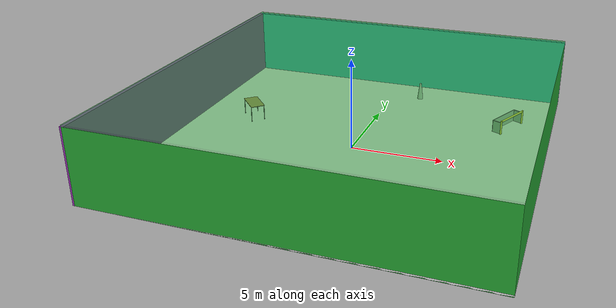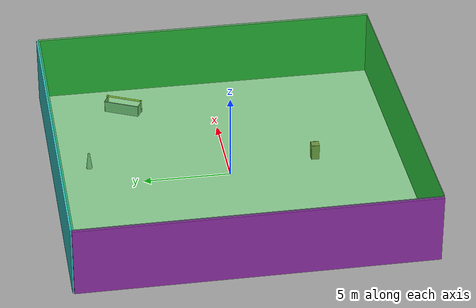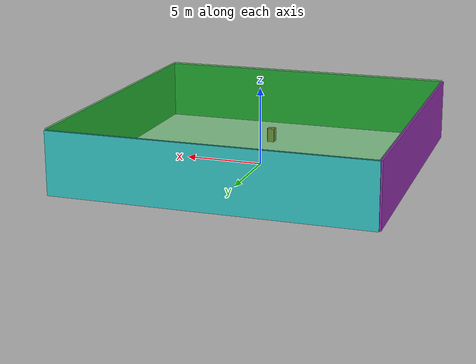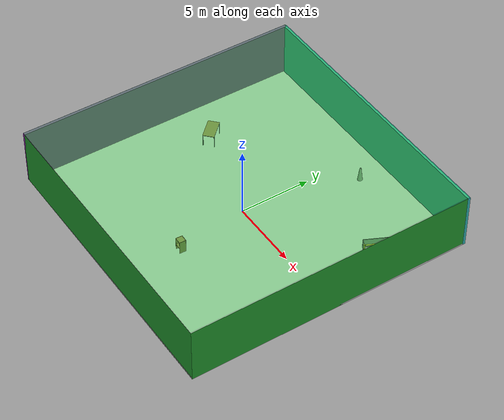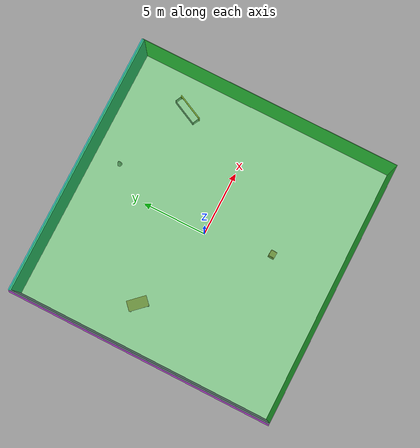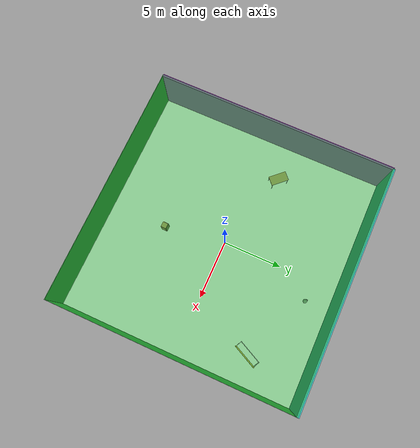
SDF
<sdf version="1.4">
 <world name="default">
  <physics type="ode">
   <max_step_size>0.001</max_step_size>
   <real_time_factor>1</real_time_factor>
   <real_time_update_rate>1000</real_time_update_rate>
   <gravity>0 0 -9.8</gravity>
  </physics>
  <scene><ambient>0.4 0.4 0.4 1</ambient><background>0.7 0.7 0.7 1</background><shadows>1</shadows></scene>
  <model name="Surrounding">
   <static>1</static>
   <link name="Ceiling">
    <collision name="Ceiling_Collision"><geometry><box><size>20 20 0.1</size></box></geometry></collision>
    <visual name="Ceiling_Visual">
     <geometry><box><size>20 20 0.1</size></box></geometry>
     <material>
      <script><uri>file://media/materials/scripts/gazebo.material</uri><name>Gazebo/GreenTransparent</name></script>
     </material>
    </visual>
    <pose>0 0 4.05 0 0 0</pose>
   </link>
   <link name="Wall_South">
    <collision name="Wall_South_Collision">
     <geometry><box><size>20 0 4</size></box></geometry>
     <pose>0 0 2 0 -0 0</pose>
    </collision>
    <visual name="Wall_South_Visual">
     <pose>0 0 2 0 -0 0</pose>
     <geometry><box><size>20 0 4</size></box></geometry>
     <material>
      <script><uri>file://media/materials/scripts/gazebo.material</uri><name>Gazebo/GreenGlow</name></script>
     </material>
    </visual>
    <velocity_decay><linear>0</linear><angular>0</angular></velocity_decay>
    <pose>0 -10 0 0 -0 0</pose>
   </link>
   <link name="Wall_East">
    <collision name="Wall_21_Collision">
     <geometry><box><size>20 0 4</size></box></geometry>
     <pose>0 0 2 0 -0 0</pose>
    </collision>
    <visual name="Wall_21_Visual">
     <pose>0 0 2 0 -0 0</pose>
     <geometry><box><size>20 0 4</size></box></geometry>
     <material>
      <script><uri>file://media/materials/scripts/gazebo.material</uri><name>Gazebo/GreenGlow</name></script>
     </material>
    </visual>
    <velocity_decay><linear>0</linear><angular>0</angular></velocity_decay>
    <pose>10 0 0 0 -0 1.5708</pose>
   </link>
   <link name="Wall_North">
    <collision name="Wall_22_Collision">
     <geometry><box><size>20 0.2 4</size></box></geometry>
     <pose>0 0 2 0 -0 0</pose>
    </collision>
    <visual name="Wall_22_Visual">
     <pose>0 0 2 0 -0 0</pose>
     <geometry><box><size>20 0.2 4</size></box></geometry>
     <material>
      <script>
       <uri>file://media/materials/scripts/gazebo.material</uri>
       <name>Gazebo/TurquoiseGlowOutline</name>
      </script>
     </material>
    </visual>
    <velocity_decay><linear>0</linear><angular>0</angular></velocity_decay>
    <pose>0 10 0 0 -0 0</pose>
   </link>
   <link name="Wall_West">
    <collision name="Wall_23_Collision">
     <geometry><box><size>20 0.2 4</size></box></geometry>
     <pose>0 0 2 0 -0 0</pose>
    </collision>
    <visual name="Wall_23_Visual">
     <pose>0 0 2 0 -0 0</pose>
     <geometry><box><size>20 0.2 4</size></box></geometry>
     <material>
      <script><uri>file://media/materials/scripts/gazebo.material</uri><name>Gazebo/Purple</name></script>
     </material>
    </visual>
    <velocity_decay><linear>0</linear><angular>0</angular></velocity_decay>
    <pose>-10 0 0 0 0 -1.5708</pose>
   </link>
   <link name="Ground_link">
    <collision name="collision">
     <pose>0 0 .05 0 -0 0</pose>
     <geometry><box><size>20 20 0.1</size></box></geometry>
    </collision>
    <visual name="visual">
     <pose>0 0 .05 0 -0 0</pose>
     <geometry><box><size>20 20 0.1</size></box></geometry>
     <material>
      <script><uri>file://media/materials/scripts/gazebo.material</uri><name>Gazebo/WhiteGlow</name></script>
     </material>
    </visual>
   </link>
   <static>1</static>
  </model>
  <spherical_coordinates>
   <surface_model>EARTH_WGS84</surface_model>
   <latitude_deg>0</latitude_deg>
   <longitude_deg>0</longitude_deg>
   <elevation>0</elevation>
   <heading_deg>0</heading_deg>
  </spherical_coordinates>
  <light name="lightball_0" type="diffuse">
   <diffuse>0.8 0.8 0.8 1</diffuse>
   <specular>0.2 0.2 0.2 1</specular>
   <attenuation>
    <range>100</range>
    <constant>0.7</constant>
    <linear>0.01</linear>
    <quadratic>0.001</quadratic>
   </attenuation>
   <direction>-0.5 0.1 -0.9</direction>
   <pose>-7.56354804756 6.95571496316 1.96087863066 0 0 0</pose>
  </light>
  <light name="lightball_1" type="diffuse">
   <diffuse>0.8 0.8 0.8 1</diffuse>
   <specular>0.2 0.2 0.2 1</specular>
   <attenuation>
    <range>100</range>
    <constant>0.7</constant>
    <linear>0.01</linear>
    <quadratic>0.001</quadratic>
   </attenuation>
   <direction>-0.5 0.1 -0.9</direction>
   <pose>8.73158760504 -5.59696902355 0.871360862782 0 0 0</pose>
  </light>
  <light name="lightball_2" type="diffuse">
   <diffuse>0.8 0.8 0.8 1</diffuse>
   <specular>0.2 0.2 0.2 1</specular>
   <attenuation>
    <range>100</range>
    <constant>0.7</constant>
    <linear>0.01</linear>
    <quadratic>0.001</quadratic>
   </attenuation>
   <direction>-0.5 0.1 -0.9</direction>
   <pose>-4.19520427786 7.36037108781 1.78254714946 0 0 0</pose>
  </light>
  <light name="lightball_3" type="diffuse">
   <diffuse>0.8 0.8 0.8 1</diffuse>
   <specular>0.2 0.2 0.2 1</specular>
   <attenuation>
    <range>100</range>
    <constant>0.7</constant>
    <linear>0.01</linear>
    <quadratic>0.001</quadratic>
   </attenuation>
   <direction>-0.5 0.1 -0.9</direction>
   <pose>0.261093472371 2.5516144521 2.83277773421 0 0 0</pose>
  </light>
  <light name="lightball_4" type="diffuse">
   <diffuse>0.8 0.8 0.8 1</diffuse>
   <specular>0.2 0.2 0.2 1</specular>
   <attenuation>
    <range>100</range>
    <constant>0.7</constant>
    <linear>0.01</linear>
    <quadratic>0.001</quadratic>
   </attenuation>
   <direction>-0.5 0.1 -0.9</direction>
   <pose>-7.23695912689 -4.57502039476 1.3744994194 0 0 0</pose>
  </light>
  <light name="lightball_5" type="diffuse">
   <diffuse>0.8 0.8 0.8 1</diffuse>
   <specular>0.2 0.2 0.2 1</specular>
   <attenuation>
    <range>100</range>
    <constant>0.7</constant>
    <linear>0.01</linear>
    <quadratic>0.001</quadratic>
   </attenuation>
   <direction>-0.5 0.1 -0.9</direction>
   <pose>8.54112712207 9.84514703279 3.75264156403 0 0 0</pose>
  </light>
  <include><uri>model://table</uri><pose>-6.75093134269 1.94657124094 0 0 0 2.32514004813</pose></include>
  <include><uri>model://cabinet</uri><pose>0.842724622702 -5.10301838042 0 0 0 1.52769996791</pose></include>
  <include>
   <uri>model://construction_cone</uri>
   <pose>1.77705125345 7.93815421447 0 0 0 1.6071608538</pose>
  </include>
  <include>
   <uri>model://robocup_3Dsim_goal</uri>
   <pose>7.80278729844 5.17129370865 0 0 0 2.692926424</pose>
  </include>
 </world>
</sdf>

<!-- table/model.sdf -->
<sdf version="1.5">
  <model name="table">
    <static>true</static>
    <link name="link">
      <collision name="surface">
        <pose>0 0 1.0 0 0 0</pose>
        <geometry>
          <box>
            <size>1.5 0.8 0.03</size>
          </box>
        </geometry>
        <surface>
          <friction>
            <ode>
              <mu>0.6</mu>
              <mu2>0.6</mu2>
            </ode>
          </friction>
        </surface>
      </collision>
      <visual name="visual1">
        <pose>0 0 1.0 0 0 0</pose>
        <geometry>
          <box>
            <size>1.5 0.8 0.03</size>
          </box>
        </geometry>
        <material>
          <script>
            <uri>model://media/materials/scripts/gazebo.material</uri>
            <name>Gazebo/Wood</name>
          </script>
        </material>
      </visual>
      <collision name="front_left_leg">
        <pose>0.68 0.38 0.5 0 0 0</pose>
        <geometry>
          <cylinder>
            <radius>0.02</radius>
            <length>1.0</length>
          </cylinder>
        </geometry>
      </collision>
      <visual name="front_left_leg">
        <pose>0.68 0.38 0.5 0 0 0</pose>
        <geometry>
          <cylinder>
            <radius>0.02</radius>
            <length>1.0</length>
          </cylinder>
        </geometry>
        <material>
          <script>
            <uri>model://media/materials/scripts/gazebo.material</uri>
            <name>Gazebo/Grey</name>
          </script>
        </material>
      </visual>
      <collision name="front_right_leg">
        <pose>0.68 -0.38 0.5 0 0 0</pose>
        <geometry>
          <cylinder>
            <radius>0.02</radius>
            <length>1.0</length>
          </cylinder>
        </geometry>
      </collision>
      <visual name="front_right_leg">
        <pose>0.68 -0.38 0.5 0 0 0</pose>
        <geometry>
          <cylinder>
            <radius>0.02</radius>
            <length>1.0</length>
          </cylinder>
        </geometry>
        <material>
          <script>
            <uri>model://media/materials/scripts/gazebo.material</uri>
            <name>Gazebo/Grey</name>
          </script>
        </material>
      </visual>
      <collision name="back_right_leg">
        <pose>-0.68 -0.38 0.5 0 0 0</pose>
        <geometry>
          <cylinder>
            <radius>0.02</radius>
            <length>1.0</length>
          </cylinder>
        </geometry>
      </collision>
      <visual name="back_right_leg">
        <pose>-0.68 -0.38 0.5 0 0 0</pose>
        <geometry>
          <cylinder>
            <radius>0.02</radius>
            <length>1.0</length>
          </cylinder>
        </geometry>
        <material>
          <script>
            <uri>model://media/materials/scripts/gazebo.material</uri>
            <name>Gazebo/Grey</name>
          </script>
        </material>
      </visual>
      <collision name="back_left_leg">
        <pose>-0.68 0.38 0.5 0 0 0</pose>
        <geometry>
          <cylinder>
            <radius>0.02</radius>
            <length>1.0</length>
          </cylinder>
        </geometry>
      </collision>
      <visual name="back_left_leg">
        <pose>-0.68 0.38 0.5 0 0 0</pose>
        <geometry>
          <cylinder>
            <radius>0.02</radius>
            <length>1.0</length>
          </cylinder>
        </geometry>
        <material>
          <script>
            <uri>model://media/materials/scripts/gazebo.material</uri>
            <name>Gazebo/Grey</name>
          </script>
        </material>
      </visual>
    </link>
  </model>
</sdf>

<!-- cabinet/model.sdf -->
<sdf version="1.5">
  <model name="cabinet">
    <static>true</static>
    <link name="cabinet_bottom_plate">
      <inertial>
        <pose>0 0 -1 0 0 0</pose>
        <inertia>
          <ixx>2.050000</ixx>
          <ixy>0</ixy>
          <ixz>0</ixz>
          <iyy>2.050000</iyy>
          <iyz>0</iyz>
          <izz>2.050000</izz>
        </inertia>
        <mass>25.000000</mass>
      </inertial>
      <collision name="cabinet_bottom_plate_geom">
        <pose>0 0 0.010000 0 0 0</pose>
        <geometry>
          <box>
            <size>0.450000 0.450000 0.020000</size>
          </box>
        </geometry>
      </collision>
      <visual name="cabinet_bottom_plate_geom_visual">
        <pose>0 0 0.010000 0 0 0</pose>
        <geometry>
          <box>
            <size>0.450000 0.450000 0.020000</size>
          </box>
        </geometry>
        <material>
          <script>
            <uri>model://media/materials/scripts/gazebo.material</uri>
            <name>Gazebo/Wood</name>
          </script>
        </material>
      </visual>
      <collision name="cabinet_bottom_plate_geom_cabinet_back_plate">
        <pose>0.235000 0 0.510000 0 0 0</pose>
        <geometry>
          <box>
            <size>0.020000 0.450000 1.020000</size>
          </box>
        </geometry>
      </collision>
      <visual name="cabinet_bottom_plate_geom_cabinet_back_plate_visual">
        <pose>0.235000 0 0.510000 0 0 0</pose>
        <geometry>
          <box>
            <size>0.020000 0.450000 1.020000</size>
          </box>
        </geometry>
        <material>
          <script>
            <uri>model://media/materials/scripts/gazebo.material</uri>
            <name>Gazebo/Wood</name>
          </script>
        </material>
      </visual>
      <collision name="cabinet_bottom_plate_geom_cabinet_left_plate">
        <pose>0 0.235000 0.510000 0 0 0</pose>
        <geometry>
          <box>
            <size>0.450000 0.020000 1.020000</size>
          </box>
        </geometry>
      </collision>
      <visual name="cabinet_bottom_plate_geom_cabinet_left_plate_visual">
        <pose>0 0.235000 0.510000 0 0 0</pose>
        <geometry>
          <box>
            <size>0.450000 0.020000 1.020000</size>
          </box>
        </geometry>
        <material>
          <script>
            <uri>model://media/materials/scripts/gazebo.material</uri>
            <name>Gazebo/Wood</name>
          </script>
        </material>
      </visual>
      <collision name="cabinet_bottom_plate_geom_cabinet_middle_plate">
        <pose>0 0 0.510000 0 0 0</pose>
        <geometry>
          <box>
            <size>0.450000 0.450000 0.020000</size>
          </box>
        </geometry>
      </collision>
      <visual name="cabinet_bottom_plate_geom_cabinet_middle_plate_visual">
        <pose>0 0 0.510000 0 0 0</pose>
        <geometry>
          <box>
            <size>0.450000 0.450000 0.020000</size>
          </box>
        </geometry>
        <material>
          <script>
            <uri>model://media/materials/scripts/gazebo.material</uri>
            <name>Gazebo/Wood</name>
          </script>
        </material>
      </visual>
      <collision name="cabinet_bottom_plate_geom_cabinet_right_plate">
        <pose>0 -0.235000 0.510000 0 0 0</pose>
        <geometry>
          <box>
            <size>0.450000 0.020000 1.020000</size>
          </box>
        </geometry>
      </collision>
      <visual name="cabinet_bottom_plate_geom_cabinet_right_plate_visual">
        <pose>0 -0.235000 0.510000 0 0 0</pose>
        <geometry>
          <box>
            <size>0.450000 0.020000 1.020000</size>
          </box>
        </geometry>
        <material>
          <script>
            <uri>model://media/materials/scripts/gazebo.material</uri>
            <name>Gazebo/Wood</name>
          </script>
        </material>
      </visual>
      <collision name="cabinet_bottom_plate_geom_cabinet_top_plate">
        <pose>0 0 1.010000 0 0 0</pose>
        <geometry>
          <box>
            <size>0.450000 0.450000 0.020000</size>
          </box>
        </geometry>
      </collision>
      <visual name="cabinet_bottom_plate_geom_cabinet_top_plate_visual">
        <pose>0 0 1.010000 0 0 0</pose>
        <geometry>
          <box>
            <size>0.450000 0.450000 0.020000</size>
          </box>
        </geometry>
        <material>
          <script>
            <uri>model://media/materials/scripts/gazebo.material</uri>
            <name>Gazebo/Wood</name>
          </script>
        </material>
      </visual>
    </link>
  </model>
</sdf>

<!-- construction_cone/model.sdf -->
<sdf version="1.5">
  <model name="Construction Cone">
    <link name="link">
      <collision name="collision">
        <geometry>
          <mesh>
            <scale>10 10 10</scale>
            <uri>file://isr-testbed/construction_cone/meshes/construction_cone.dae</uri>
          </mesh>
        </geometry>
      </collision>
      <visual name="visual">
        <geometry>
          <mesh>
            <scale>10 10 10</scale>
            <uri>file://isr-testbed/construction_cone/meshes/construction_cone.dae</uri>
          </mesh>
        </geometry>
      </visual>
    </link>
  </model>
</sdf>

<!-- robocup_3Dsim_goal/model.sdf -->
<sdf version="1.5">
  <model name="robocup_3d_goal">
    <static>true</static>
    <link name="left_post">
      <pose>0 1.05 0.45 0 0 0</pose>
      <collision name="collision">
        <geometry>
          <cylinder>
            <radius>0.05</radius>
            <length>0.9</length>
          </cylinder>
        </geometry>
      </collision>
      <visual name="visual">
        <geometry>
          <cylinder>
            <radius>0.05</radius>
            <length>0.9</length>
          </cylinder>
        </geometry>
        <material>
          <script>
            <uri>file://media/materials/scripts/gazebo.material</uri>
            <name>Gazebo/ZincYellow</name>
          </script>
        </material>
      </visual>
    </link>
    <link name="left_support_horiz_lower">
      <pose>0.30 1.05 0.01 0 0 0</pose>
      <collision name="collision">
        <geometry>
          <box>
            <size>0.50 0.02 0.02</size>
          </box>
        </geometry>
      </collision>
      <visual name="visual">
        <geometry>
          <box>
            <size>0.50 0.02 0.02</size>
          </box>
        </geometry>
        <material>
          <script>
            <uri>file://media/materials/scripts/gazebo.material</uri>
            <name>Gazebo/White</name>
          </script>
        </material>
      </visual>
    </link>
    <link name="left_support_horiz_upper">
      <pose>0.30 1.05 0.79 0 0 0</pose>
      <collision name="collision">
        <geometry>
          <box>
            <size>0.50 0.02 0.02</size>
          </box>
        </geometry>
      </collision>
      <visual name="visual">
        <geometry>
          <box>
            <size>0.50 0.02 0.02</size>
          </box>
        </geometry>
        <material>
          <script>
            <uri>file://media/materials/scripts/gazebo.material</uri>
            <name>Gazebo/White</name>
          </script>
        </material>
      </visual>
    </link>
    <link name="left_support_vertical">
      <pose>0.56 1.05 0.4 0 1.5708 0</pose>
      <collision name="collision">
        <geometry>
          <box>
            <size>0.80 0.02 0.02</size>
          </box>
        </geometry>
      </collision>
      <visual name="visual">
        <geometry>
          <box>
            <size>0.80 0.02 0.02</size>
          </box>
        </geometry>
        <material>
          <script>
            <uri>file://media/materials/scripts/gazebo.material</uri>
            <name>Gazebo/White</name>
          </script>
        </material>
      </visual>
    </link>
    <link name="right_support_horiz_lower">
      <pose>0.30 -1.05 0.01 0 0 0</pose>
      <collision name="collision">
        <geometry>
          <box>
            <size>0.50 0.02 0.02</size>
          </box>
        </geometry>
      </collision>
      <visual name="visual">
        <geometry>
          <box>
            <size>0.50 0.02 0.02</size>
          </box>
        </geometry>
        <material>
          <script>
            <uri>file://media/materials/scripts/gazebo.material</uri>
            <name>Gazebo/White</name>
          </script>
        </material>
      </visual>
    </link>
    <link name="right_support_horiz_upper">
      <pose>0.30 -1.05 0.79 0 0 0</pose>
      <collision name="collision">
        <geometry>
          <box>
            <size>0.50 0.02 0.02</size>
          </box>
        </geometry>
      </collision>
      <visual name="visual">
        <geometry>
          <box>
            <size>0.50 0.02 0.02</size>
          </box>
        </geometry>
        <material>
          <script>
            <uri>file://media/materials/scripts/gazebo.material</uri>
            <name>Gazebo/White</name>
          </script>
        </material>
      </visual>
    </link>
    <link name="right_support_vertical">
      <pose>0.56 -1.05 0.4 0 1.5708 0</pose>
      <collision name="collision">
        <geometry>
          <box>
            <size>0.80 0.02 0.02</size>
          </box>
        </geometry>
      </collision>
      <visual name="visual">
        <geometry>
          <box>
            <size>0.80 0.02 0.02</size>
          </box>
        </geometry>
        <material>
          <script>
            <uri>file://media/materials/scripts/gazebo.material</uri>
            <name>Gazebo/White</name>
          </script>
        </material>
      </visual>
    </link>
    <link name="center_support_horiz_lower">
      <pose>0.56 0 0.01 0 1.5708 0</pose>
      <collision name="collision">
        <geometry>
          <box>
            <size>0.02 2.08 0.02</size>
          </box>
        </geometry>
      </collision>
      <visual name="visual">
        <geometry>
          <box>
            <size>0.02 2.08 0.02</size>
          </box>
        </geometry>
        <material>
          <script>
            <uri>file://media/materials/scripts/gazebo.material</uri>
            <name>Gazebo/White</name>
          </script>
        </material>
      </visual>
    </link>
    <link name="center_support_horiz_upper">
      <pose>0.56 0 0.79 0 1.5708 0</pose>
      <collision name="collision">
        <geometry>
          <box>
            <size>0.02 2.08 0.02</size>
          </box>
        </geometry>
      </collision>
      <visual name="visual">
        <geometry>
          <box>
            <size>0.02 2.08 0.02</size>
          </box>
        </geometry>
        <material>
          <script>
            <uri>file://media/materials/scripts/gazebo.material</uri>
            <name>Gazebo/White</name>
          </script>
        </material>
      </visual>
    </link>
    <link name="right_post">
      <pose>0 -1.05 0.45 0 0 0</pose>
      <collision name="collision">
        <geometry>
          <cylinder>
            <radius>0.05</radius>
            <length>0.9</length>
          </cylinder>
        </geometry>
      </collision>
      <visual name="visual">
        <geometry>
          <cylinder>
            <radius>0.05</radius>
            <length>0.9</length>
          </cylinder>
        </geometry>
        <material>
          <script>
            <uri>file://media/materials/scripts/gazebo.material</uri>
            <name>Gazebo/ZincYellow</name>
          </script>
        </material>
      </visual>
    </link>
    <link name="crossbar">
      <pose>0 0 0.85 1.57 1.57 0</pose>
      <collision name="collision">
        <geometry>
          <cylinder>
            <radius>0.05</radius>
            <length>2.0</length>
          </cylinder>
        </geometry>
      </collision>
      <visual name="visual">
        <geometry>
          <cylinder>
            <radius>0.05</radius>
            <length>2.0</length>
          </cylinder>
        </geometry>
        <material>
          <script>
            <uri>file://media/materials/scripts/gazebo.material</uri>
            <name>Gazebo/ZincYellow</name>
          </script>
        </material>
      </visual>
    </link>
    <link name="center_net">
      <pose>0.56 0 0.40 0 0 0</pose>
      <collision name="collision">
        <geometry>
          <box>
            <size>0.01 2.1 0.80</size>
          </box>
        </geometry>
      </collision>
      <visual name="visual">
        <geometry>
          <box>
            <size>0.01 2.1 0.80</size>
          </box>
        </geometry>
        <material>
          <script>
            <uri>model://../model_source/models/robocup09_spl_field/materials/scripts/</uri>
            <uri>model://../model_source/models/robocup09_spl_field/materials/textures/</uri>
            <name>RoboCup/Net</name>
          </script>
        </material>
      </visual>
    </link>
    <link name="left_net">
      <pose>0.30 1.05 0.40 0 0 0</pose>
      <collision name="collision">
        <geometry>
          <box>
            <size>0.50 0.01 0.76</size>
          </box>
        </geometry>
      </collision>
      <visual name="visual">
        <geometry>
          <box>
            <size>0.50 0.01 0.76</size>
          </box>
        </geometry>
        <material>
          <script>
            <uri>model://../model_source/models/robocup09_spl_field/materials/scripts/</uri>
            <uri>model://../model_source/models/robocup09_spl_field/materials/textures/</uri>
            <name>RoboCup/Net</name>
          </script>
        </material>
      </visual>
    </link>
    <link name="right_net">
      <pose>0.30 -1.05 0.40 0 0 0</pose>
      <collision name="collision">
        <geometry>
          <box>
            <size>0.50 0.01 0.76</size>
          </box>
        </geometry>
      </collision>
      <visual name="visual">
        <geometry>
          <box>
            <size>0.50 0.01 0.76</size>
          </box>
        </geometry>
        <material>
          <script>
            <uri>model://../model_source/models/robocup09_spl_field/materials/scripts/</uri>
            <uri>model://../model_source/models/robocup09_spl_field/materials/textures/</uri>
            <name>RoboCup/Net</name>
          </script>
        </material>
      </visual>
    </link>
  </model>
</sdf>
